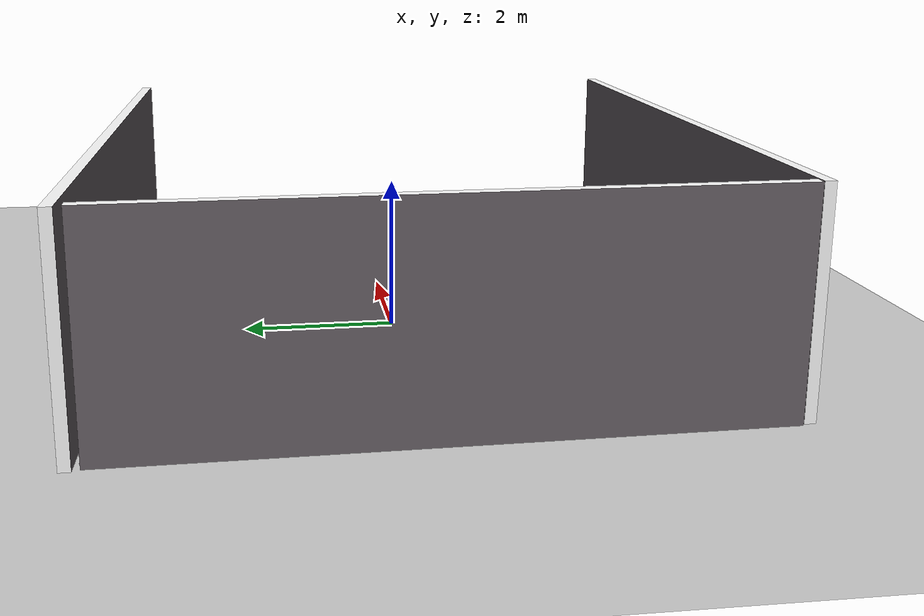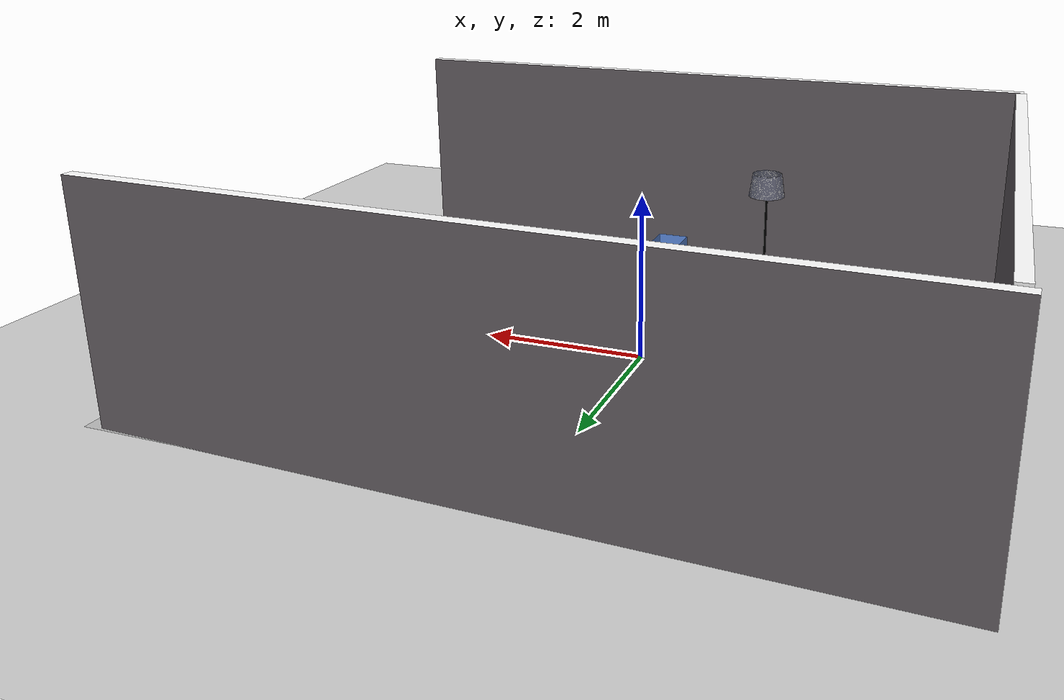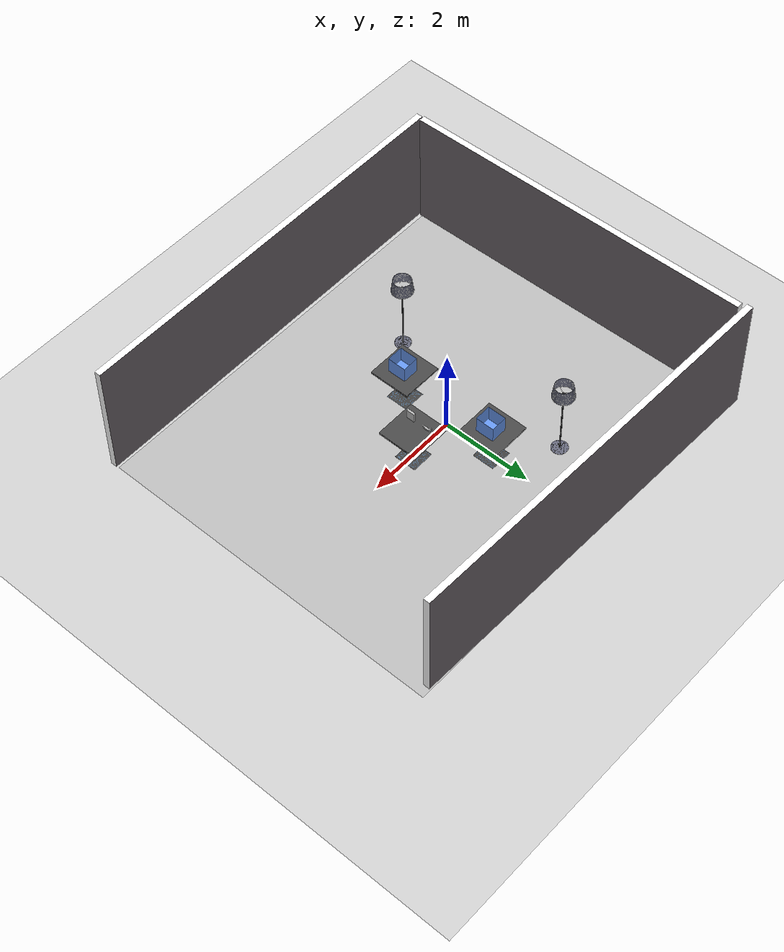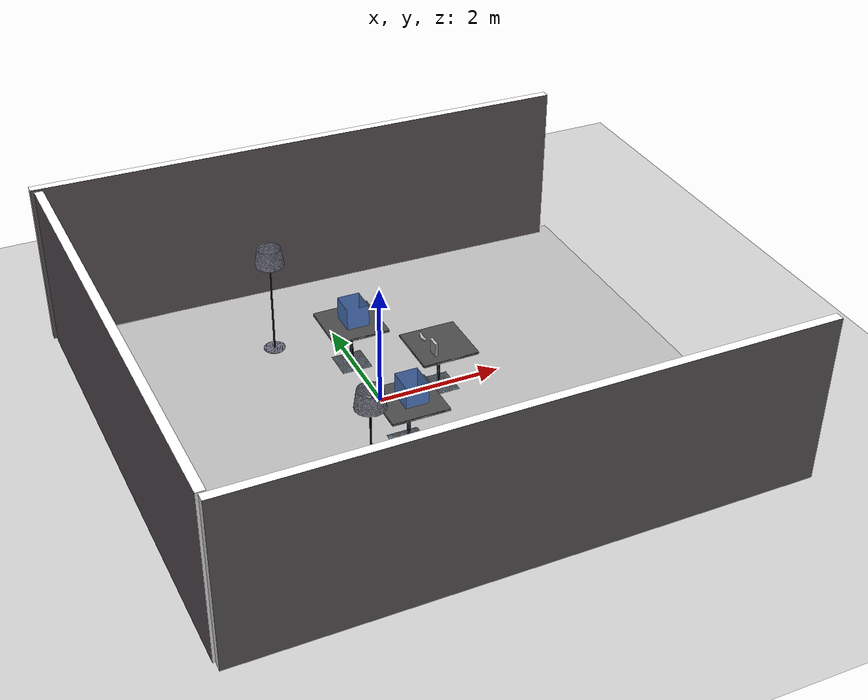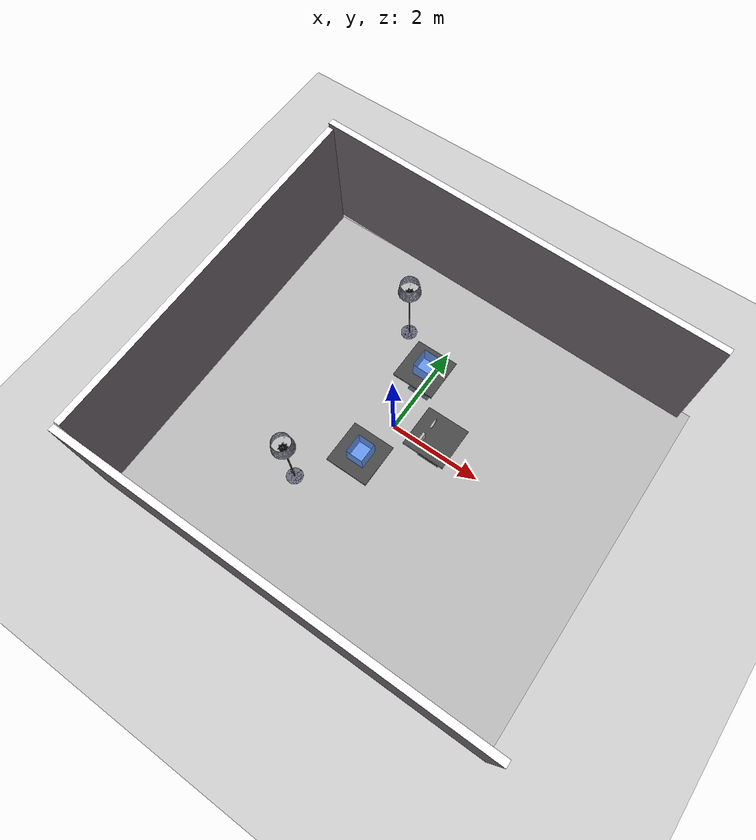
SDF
<sdf version="1.4">
 <world name="default">
  <model name="ground_plane">
   <static>1</static>
   <link name="link">
    <collision name="collision">
     <geometry><plane><normal>0 0 1</normal><size>100 100</size></plane></geometry>
     <surface><friction><ode><mu>100</mu><mu2>50</mu2></ode></friction></surface>
    </collision>
    <visual name="visual">
     <cast_shadows>0</cast_shadows>
     <geometry><plane><normal>0 0 1</normal><size>100 100</size></plane></geometry>
     <material>
      <script><uri>file://media/materials/scripts/gazebo.material</uri><name>Gazebo/Grey</name></script>
     </material>
    </visual>
    <velocity_decay><linear>0</linear><angular>0</angular></velocity_decay>
   </link>
  </model>
  <light name="sun" type="directional">
   <pose>0 0 10 0 -0 0</pose>
   <diffuse>0.8 0.8 0.8 1</diffuse>
   <specular>0.2 0.2 0.2 1</specular>
   <attenuation>
    <range>1000</range>
    <constant>0.9</constant>
    <linear>0.01</linear>
    <quadratic>0.001</quadratic>
   </attenuation>
   <direction>-0.5 0.1 -0.9</direction>
  </light>
  <physics type="ode">
   <real_time_update_rate>1000</real_time_update_rate>
   <gravity>0 0 -9.81</gravity>
   <max_step_size>0.001</max_step_size>
   <real_time_factor>1</real_time_factor>
  </physics>
  <scene><ambient>0.4 0.4 0.4 1</ambient><background>0.7 0.7 0.7 1</background><shadows>1</shadows></scene>
  <spherical_coordinates>
   <surface_model>EARTH_WGS84</surface_model>
   <latitude_deg>0</latitude_deg>
   <longitude_deg>0</longitude_deg>
   <elevation>0</elevation>
   <heading_deg>0</heading_deg>
  </spherical_coordinates>
  <model name="Middle_Table">
   <static>1</static>
   <link name="link">
    <collision name="surface">
     <pose>0 0 0.755 0 -0 0</pose>
     <geometry><box><size>0.913 0.913 0.04</size></box></geometry>
    </collision>
    <collision name="column">
     <pose>0 0 0.37 0 -0 0</pose>
     <geometry><box><size>0.042 0.042 0.74</size></box></geometry>
    </collision>
    <collision name="base">
     <pose>0 0 0.02 0 -0 0</pose>
     <geometry><box><size>0.56 0.56 0.04</size></box></geometry>
    </collision>
    <visual name="visual"><geometry><mesh><uri>model://PnPTable/table.dae</uri></mesh></geometry></visual>
    <velocity_decay><linear>0</linear><angular>0</angular></velocity_decay>
   </link>
   <pose>1 0 0 0 -0 0</pose>
  </model>
  <model name="Left_Side_Table">
   <static>1</static>
   <link name="link">
    <collision name="surface">
     <pose>0 0 0.755 0 -0 0</pose>
     <geometry><box><size>0.913 0.913 0.04</size></box></geometry>
    </collision>
    <collision name="column">
     <pose>0 0 0.37 0 -0 0</pose>
     <geometry><box><size>0.042 0.042 0.74</size></box></geometry>
    </collision>
    <collision name="base">
     <pose>0 0 0.02 0 -0 0</pose>
     <geometry><box><size>0.56 0.56 0.04</size></box></geometry>
    </collision>
    <visual name="visual"><geometry><mesh><uri>model://PnPTable/table.dae</uri></mesh></geometry></visual>
    <velocity_decay><linear>0</linear><angular>0</angular></velocity_decay>
   </link>
   <pose>0 1.1 0 0 -0 0</pose>
  </model>
  <model name="Right_Side_Table">
   <static>1</static>
   <link name="link">
    <collision name="surface">
     <pose>0 0 0.755 0 -0 0</pose>
     <geometry><box><size>0.913 0.913 0.04</size></box></geometry>
    </collision>
    <collision name="column">
     <pose>0 0 0.37 0 -0 0</pose>
     <geometry><box><size>0.042 0.042 0.74</size></box></geometry>
    </collision>
    <collision name="base">
     <pose>0 0 0.02 0 -0 0</pose>
     <geometry><box><size>0.56 0.56 0.04</size></box></geometry>
    </collision>
    <visual name="visual"><geometry><mesh><uri>model://PnPTable/table.dae</uri></mesh></geometry></visual>
    <velocity_decay><linear>0</linear><angular>0</angular></velocity_decay>
   </link>
   <pose>0 -1.1 0 0 -0 0</pose>
  </model>
  <model name="Left_Side_Box">
   <static>0</static>
   <link name="box_link">
    <collision name="box_collision"><geometry><box><size>0.4 0.4 0.01</size></box></geometry></collision>
    <visual name="box_mesh"><geometry><mesh><uri>model://PnPBox/box.dae</uri></mesh></geometry></visual>
    <velocity_decay><linear>0</linear><angular>0</angular></velocity_decay>
    <inertial>
     <inertia><ixx>1</ixx><ixy>0</ixy><ixz>0</ixz><iyy>1</iyy><iyz>0</iyz><izz>1</izz></inertia>
     <mass>1</mass>
    </inertial>
   </link>
   <pose>0 1.1 0.78 -0 -0 -0</pose>
  </model>
  <model name="Right_Side_Box">
   <static>0</static>
   <link name="box_link">
    <collision name="box_collision"><geometry><box><size>0.4 0.4 0.01</size></box></geometry></collision>
    <visual name="box_mesh"><geometry><mesh><uri>model://PnPBox/box.dae</uri></mesh></geometry></visual>
    <velocity_decay><linear>0</linear><angular>0</angular></velocity_decay>
    <inertial>
     <inertia><ixx>1</ixx><ixy>0</ixy><ixz>0</ixz><iyy>1</iyy><iyz>0</iyz><izz>1</izz></inertia>
     <mass>1</mass>
    </inertial>
   </link>
   <pose>0 -1.1 0.78 -0 -0 -0</pose>
  </model>
  <model name="Banana_Model">
   <static>0</static>
   <link name="Banana_link">
    <collision name="Banana_collision"><geometry><box><size>0.2 0.05 0.065</size></box></geometry></collision>
    <visual name="Banana_mesh"><geometry><mesh><uri>model://PnPBanana/banana.dae</uri></mesh></geometry></visual>
    <velocity_decay><linear>0</linear><angular>0</angular></velocity_decay>
    <inertial>
     <inertia><ixx>1</ixx><ixy>0</ixy><ixz>0</ixz><iyy>1</iyy><iyz>0</iyz><izz>1</izz></inertia>
     <mass>1</mass>
    </inertial>
   </link>
   <pose>0.800001 0.199999 0.8075 -5e-06 -1e-06 -1.52856</pose>
  </model>
  <model name="CheezeIt_Model">
   <static>0</static>
   <link name="Cheezeit_link">
    <collision name="Cheezeit_collision"><geometry><box><size>0.042 0.18 0.23</size></box></geometry></collision>
    <visual name="Cheezeit_mesh">
     <geometry><mesh><uri>model://PnPCheezeIt/Cheez_it.dae</uri></mesh></geometry>
    </visual>
    <velocity_decay><linear>0</linear><angular>0</angular></velocity_decay>
    <inertial>
     <inertia><ixx>1</ixx><ixy>0</ixy><ixz>0</ixz><iyy>1</iyy><iyz>0</iyz><izz>1</izz></inertia>
     <mass>1</mass>
    </inertial>
   </link>
   <pose>0.800003 -0.2 0.89 -2e-06 8e-06 1.5e-05</pose>
  </model>
  <model name="Left_Lamp">
   <static>1</static>
   <link name="lamp_link">
    <collision name="floor_collision"><geometry><box><size>0.35 0.42 1.85</size></box></geometry></collision>
    <visual name="lamp_mesh"><geometry><mesh><uri>model://lamp/lamp.dae</uri></mesh></geometry></visual>
    <velocity_decay><linear>0</linear><angular>0</angular></velocity_decay>
   </link>
   <pose>-1 2 0.91 0 -0 0</pose>
  </model>
  <model name="Right_Lamp">
   <static>1</static>
   <link name="lamp_link">
    <collision name="floor_collision"><geometry><box><size>0.35 0.42 1.85</size></box></geometry></collision>
    <visual name="lamp_mesh"><geometry><mesh><uri>model://lamp/lamp.dae</uri></mesh></geometry></visual>
    <velocity_decay><linear>0</linear><angular>0</angular></velocity_decay>
   </link>
   <pose>-1 -2 0.91 0 -0 0</pose>
  </model>
  <model name="Floor">
   <static>1</static>
   <link name="floor_link">
    <collision name="floor_collision">
     <geometry><box><size>0.3302 0.339725 0.0001</size></box></geometry>
    </collision>
    <visual name="floor_mesh"><geometry><mesh><uri>model://floor/floor.dae</uri></mesh></geometry></visual>
    <velocity_decay><linear>0</linear><angular>0</angular></velocity_decay>
   </link>
   <pose>0.3 0 0.00625 0 -0 0</pose>
  </model>
  <model name="Background_Wall">
   <static>1</static>
   <link name="wall_one_link">
    <collision name="wall_one_collision"><geometry><box><size>3.28 0.9 0</size></box></geometry></collision>
    <visual name="wall_one_mesh">
     <geometry><mesh><uri>model://wall_one/wall_one.dae</uri></mesh></geometry>
    </visual>
    <velocity_decay><linear>0</linear><angular>0</angular></velocity_decay>
   </link>
   <pose>-4 -4.1 0 0 -0 0</pose>
  </model>
  <model name="Left_Side_Wall">
   <static>1</static>
   <link name="wall_link">
    <collision name="wall_collision"><geometry><box><size>3.28 0.9 0</size></box></geometry></collision>
    <visual name="wall_mesh"><geometry><mesh><uri>model://wall/wall.dae</uri></mesh></geometry></visual>
    <velocity_decay><linear>0</linear><angular>0</angular></velocity_decay>
   </link>
   <pose>-4 -4.1 0 0 0 -1.58301</pose>
  </model>
  <model name="Right_Side_Wall">
   <static>1</static>
   <link name="wall_link">
    <collision name="wall_collision"><geometry><box><size>3.28 0.9 0</size></box></geometry></collision>
    <visual name="wall_mesh"><geometry><mesh><uri>model://wall/wall.dae</uri></mesh></geometry></visual>
    <velocity_decay><linear>0</linear><angular>0</angular></velocity_decay>
   </link>
   <pose>4.7 3.5 0 0 -0 1.52991</pose>
  </model>
 </world>
</sdf>
